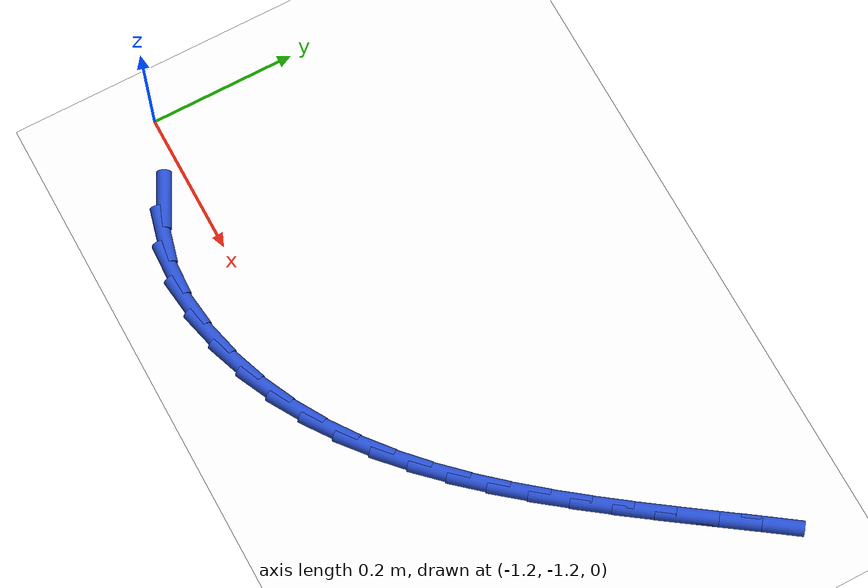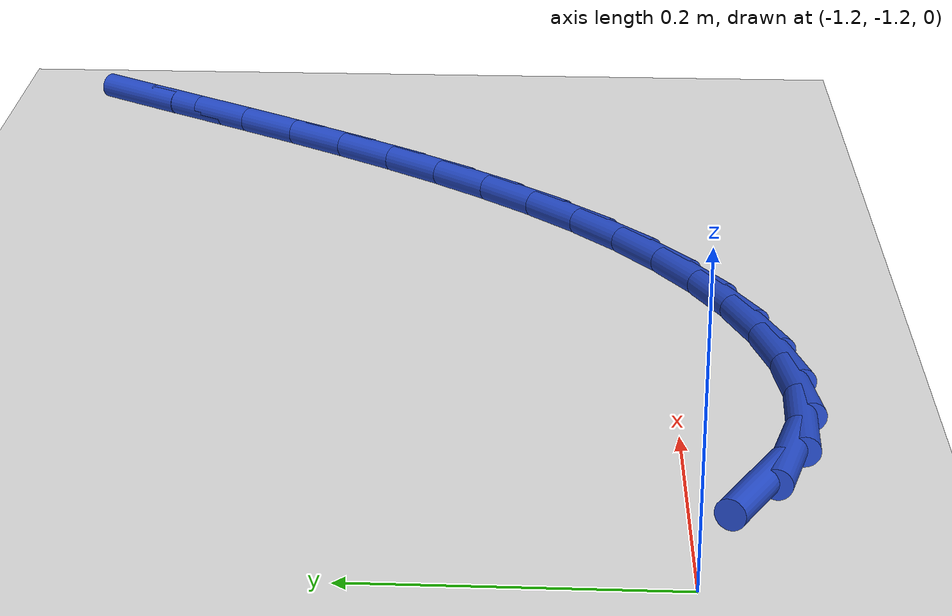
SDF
<sdf version="1.6">
 <world name="default">
  <model name="ground_plane">
   <static>1</static>
   <link name="link">
    <collision name="collision">
     <geometry><plane><normal>0 0 1</normal><size>100 100</size></plane></geometry>
     <surface><friction><ode><mu>100</mu><mu2>50</mu2></ode></friction></surface>
    </collision>
    <visual name="visual">
     <cast_shadows>0</cast_shadows>
     <geometry><plane><normal>0 0 1</normal><size>100 100</size></plane></geometry>
     <material>
      <script><uri>file://media/materials/scripts/gazebo.material</uri><name>Gazebo/WhiteGlow</name></script>
     </material>
    </visual>
   </link>
  </model>
  <model name="line">
   <link name="link_124">
    <pose>-1.0901164113115627 -1.2402849270004161 0.01 0 1.57 -0.4673058319737988</pose>
    <collision name="collision">
     <geometry><cylinder><radius>0.01</radius><length>0.08</length></cylinder></geometry>
    </collision>
    <visual name="visual">
     <material>
      <script><name>Gazebo/Blue</name><uri>file://media/materials/scripts/gazebo.material</uri></script>
     </material>
     <geometry><cylinder><radius>0.01</radius><length>0.08</length></cylinder></geometry>
    </visual>
   </link>
   <link name="link_125">
    <pose>-1.046554007873303 -1.2622656958716298 0.01 0 1.57 -0.2569612145441162</pose>
    <collision name="collision">
     <geometry><cylinder><radius>0.01</radius><length>0.08</length></cylinder></geometry>
    </collision>
    <visual name="visual">
     <material>
      <script><name>Gazebo/Blue</name><uri>file://media/materials/scripts/gazebo.material</uri></script>
     </material>
     <geometry><cylinder><radius>0.01</radius><length>0.08</length></cylinder></geometry>
    </visual>
   </link>
   <link name="link_126">
    <pose>-0.9994891125035609 -1.2746329538349666 0.01 0 1.57 -0.0454451038844772</pose>
    <collision name="collision">
     <geometry><cylinder><radius>0.01</radius><length>0.08</length></cylinder></geometry>
    </collision>
    <visual name="visual">
     <material>
      <script><name>Gazebo/Blue</name><uri>file://media/materials/scripts/gazebo.material</uri></script>
     </material>
     <geometry><cylinder><radius>0.01</radius><length>0.08</length></cylinder></geometry>
    </visual>
   </link>
   <link name="link_127">
    <pose>-0.9493375686128284 -1.2769136662593874 0.01 0 1.57 0.11529626603704819</pose>
    <collision name="collision">
     <geometry><cylinder><radius>0.01</radius><length>0.08</length></cylinder></geometry>
    </collision>
    <visual name="visual">
     <material>
      <script><name>Gazebo/Blue</name><uri>file://media/materials/scripts/gazebo.material</uri></script>
     </material>
     <geometry><cylinder><radius>0.01</radius><length>0.08</length></cylinder></geometry>
    </visual>
   </link>
   <link name="link_128">
    <pose>-0.8981752653682443 -1.2709885658646765 0.01 0 1.57 0.23705064011510715</pose>
    <collision name="collision">
     <geometry><cylinder><radius>0.01</radius><length>0.08</length></cylinder></geometry>
    </collision>
    <visual name="visual">
     <material>
      <script><name>Gazebo/Blue</name><uri>file://media/materials/scripts/gazebo.material</uri></script>
     </material>
     <geometry><cylinder><radius>0.01</radius><length>0.08</length></cylinder></geometry>
    </visual>
   </link>
   <link name="link_129">
    <pose>-0.8481977062449798 -1.258914339312104 0.01 0 1.57 0.33944671846491886</pose>
    <collision name="collision">
     <geometry><cylinder><radius>0.01</radius><length>0.08</length></cylinder></geometry>
    </collision>
    <visual name="visual">
     <material>
      <script><name>Gazebo/Blue</name><uri>file://media/materials/scripts/gazebo.material</uri></script>
     </material>
     <geometry><cylinder><radius>0.01</radius><length>0.08</length></cylinder></geometry>
    </visual>
   </link>
   <link name="link_130">
    <pose>-0.8007914600914782 -1.2421745070562626 0.01 0 1.57 0.436529574245083</pose>
    <collision name="collision">
     <geometry><cylinder><radius>0.01</radius><length>0.08</length></cylinder></geometry>
    </collision>
    <visual name="visual">
     <material>
      <script><name>Gazebo/Blue</name><uri>file://media/materials/scripts/gazebo.material</uri></script>
     </material>
     <geometry><cylinder><radius>0.01</radius><length>0.08</length></cylinder></geometry>
    </visual>
   </link>
   <link name="link_131">
    <pose>-0.7559016595967513 -1.2212312678424615 0.01 0 1.57 0.5272554938734259</pose>
    <collision name="collision">
     <geometry><cylinder><radius>0.01</radius><length>0.08</length></cylinder></geometry>
    </collision>
    <visual name="visual">
     <material>
      <script><name>Gazebo/Blue</name><uri>file://media/materials/scripts/gazebo.material</uri></script>
     </material>
     <geometry><cylinder><radius>0.01</radius><length>0.08</length></cylinder></geometry>
    </visual>
   </link>
   <link name="link_132">
    <pose>-0.7133245896884877 -1.196441355148592 0.01 0 1.57 0.6099330298271479</pose>
    <collision name="collision">
     <geometry><cylinder><radius>0.01</radius><length>0.08</length></cylinder></geometry>
    </collision>
    <visual name="visual">
     <material>
      <script><name>Gazebo/Blue</name><uri>file://media/materials/scripts/gazebo.material</uri></script>
     </material>
     <geometry><cylinder><radius>0.01</radius><length>0.08</length></cylinder></geometry>
    </visual>
   </link>
   <link name="link_133">
    <pose>-0.6728565352943737 -1.1681615024525445 0.01 0 1.57 0.6835777002428326</pose>
    <collision name="collision">
     <geometry><cylinder><radius>0.01</radius><length>0.08</length></cylinder></geometry>
    </collision>
    <visual name="visual">
     <material>
      <script><name>Gazebo/Blue</name><uri>file://media/materials/scripts/gazebo.material</uri></script>
     </material>
     <geometry><cylinder><radius>0.01</radius><length>0.08</length></cylinder></geometry>
    </visual>
   </link>
   <link name="link_134">
    <pose>-0.6342937813420972 -1.1367484432322106 0.01 0 1.57 0.747814040916252</pose>
    <collision name="collision">
     <geometry><cylinder><radius>0.01</radius><length>0.08</length></cylinder></geometry>
    </collision>
    <visual name="visual">
     <material>
      <script><name>Gazebo/Blue</name><uri>file://media/materials/scripts/gazebo.material</uri></script>
     </material>
     <geometry><cylinder><radius>0.01</radius><length>0.08</length></cylinder></geometry>
    </visual>
   </link>
   <link name="link_135">
    <pose>-0.5974326127593442 -1.1025589109654803 0.01 0 1.57 0.8027082177433889</pose>
    <collision name="collision">
     <geometry><cylinder><radius>0.01</radius><length>0.08</length></cylinder></geometry>
    </collision>
    <visual name="visual">
     <material>
      <script><name>Gazebo/Blue</name><uri>file://media/materials/scripts/gazebo.material</uri></script>
     </material>
     <geometry><cylinder><radius>0.01</radius><length>0.08</length></cylinder></geometry>
    </visual>
   </link>
   <link name="link_136">
    <pose>-0.5620693144738024 -1.065949639130245 0.01 0 1.57 0.8485946911654091</pose>
    <collision name="collision">
     <geometry><cylinder><radius>0.01</radius><length>0.08</length></cylinder></geometry>
    </collision>
    <visual name="visual">
     <material>
      <script><name>Gazebo/Blue</name><uri>file://media/materials/scripts/gazebo.material</uri></script>
     </material>
     <geometry><cylinder><radius>0.01</radius><length>0.08</length></cylinder></geometry>
    </visual>
   </link>
   <link name="link_137">
    <pose>-0.5280001714131596 -1.0272773612043966 0.01 0 1.57 0.885932195913481</pose>
    <collision name="collision">
     <geometry><cylinder><radius>0.01</radius><length>0.08</length></cylinder></geometry>
    </collision>
    <visual name="visual">
     <material>
      <script><name>Gazebo/Blue</name><uri>file://media/materials/scripts/gazebo.material</uri></script>
     </material>
     <geometry><cylinder><radius>0.01</radius><length>0.08</length></cylinder></geometry>
    </visual>
   </link>
   <link name="link_138">
    <pose>-0.49502146850510254 -0.9868988106658253 0.01 0 1.57 0.9151993645075479</pose>
    <collision name="collision">
     <geometry><cylinder><radius>0.01</radius><length>0.08</length></cylinder></geometry>
    </collision>
    <visual name="visual">
     <material>
      <script><name>Gazebo/Blue</name><uri>file://media/materials/scripts/gazebo.material</uri></script>
     </material>
     <geometry><cylinder><radius>0.01</radius><length>0.08</length></cylinder></geometry>
    </visual>
   </link>
   <link name="link_139">
    <pose>-0.46292949067731837 -0.9451707209924218 0.01 0 1.57 0.9368261054851876</pose>
    <collision name="collision">
     <geometry><cylinder><radius>0.01</radius><length>0.08</length></cylinder></geometry>
    </collision>
    <visual name="visual">
     <material>
      <script><name>Gazebo/Blue</name><uri>file://media/materials/scripts/gazebo.material</uri></script>
     </material>
     <geometry><cylinder><radius>0.01</radius><length>0.08</length></cylinder></geometry>
    </visual>
   </link>
   <link name="link_140">
    <pose>-0.4315205228574942 -0.9024498256620777 0.01 0 1.57 0.9511517279794488</pose>
    <collision name="collision">
     <geometry><cylinder><radius>0.01</radius><length>0.08</length></cylinder></geometry>
    </collision>
    <visual name="visual">
     <material>
      <script><name>Gazebo/Blue</name><uri>file://media/materials/scripts/gazebo.material</uri></script>
     </material>
     <geometry><cylinder><radius>0.01</radius><length>0.08</length></cylinder></geometry>
    </visual>
   </link>
   <link name="link_141">
    <pose>-0.40059084997331695 -0.8590928581526832 0.01 0 1.57 0.9584008032076042</pose>
    <collision name="collision">
     <geometry><cylinder><radius>0.01</radius><length>0.08</length></cylinder></geometry>
    </collision>
    <visual name="visual">
     <material>
      <script><name>Gazebo/Blue</name><uri>file://media/materials/scripts/gazebo.material</uri></script>
     </material>
     <geometry><cylinder><radius>0.01</radius><length>0.08</length></cylinder></geometry>
    </visual>
   </link>
   <link name="link_142">
    <pose>-0.3699367569524745 -0.8154565519421305 0.01 0 1.57 0.9586697912344756</pose>
    <collision name="collision">
     <geometry><cylinder><radius>0.01</radius><length>0.08</length></cylinder></geometry>
    </collision>
    <visual name="visual">
     <material>
      <script><name>Gazebo/Blue</name><uri>file://media/materials/scripts/gazebo.material</uri></script>
     </material>
     <geometry><cylinder><radius>0.01</radius><length>0.08</length></cylinder></geometry>
    </visual>
   </link>
   <link name="link_143">
    <pose>-0.3393545287226539 -0.7718976405083099 0.01 0 1.57 0.9519199318991964</pose>
    <collision name="collision">
     <geometry><cylinder><radius>0.01</radius><length>0.08</length></cylinder></geometry>
    </collision>
    <visual name="visual">
     <material>
      <script><name>Gazebo/Blue</name><uri>file://media/materials/scripts/gazebo.material</uri></script>
     </material>
     <geometry><cylinder><radius>0.01</radius><length>0.08</length></cylinder></geometry>
    </visual>
   </link>
  </model>
 </world>
</sdf>
